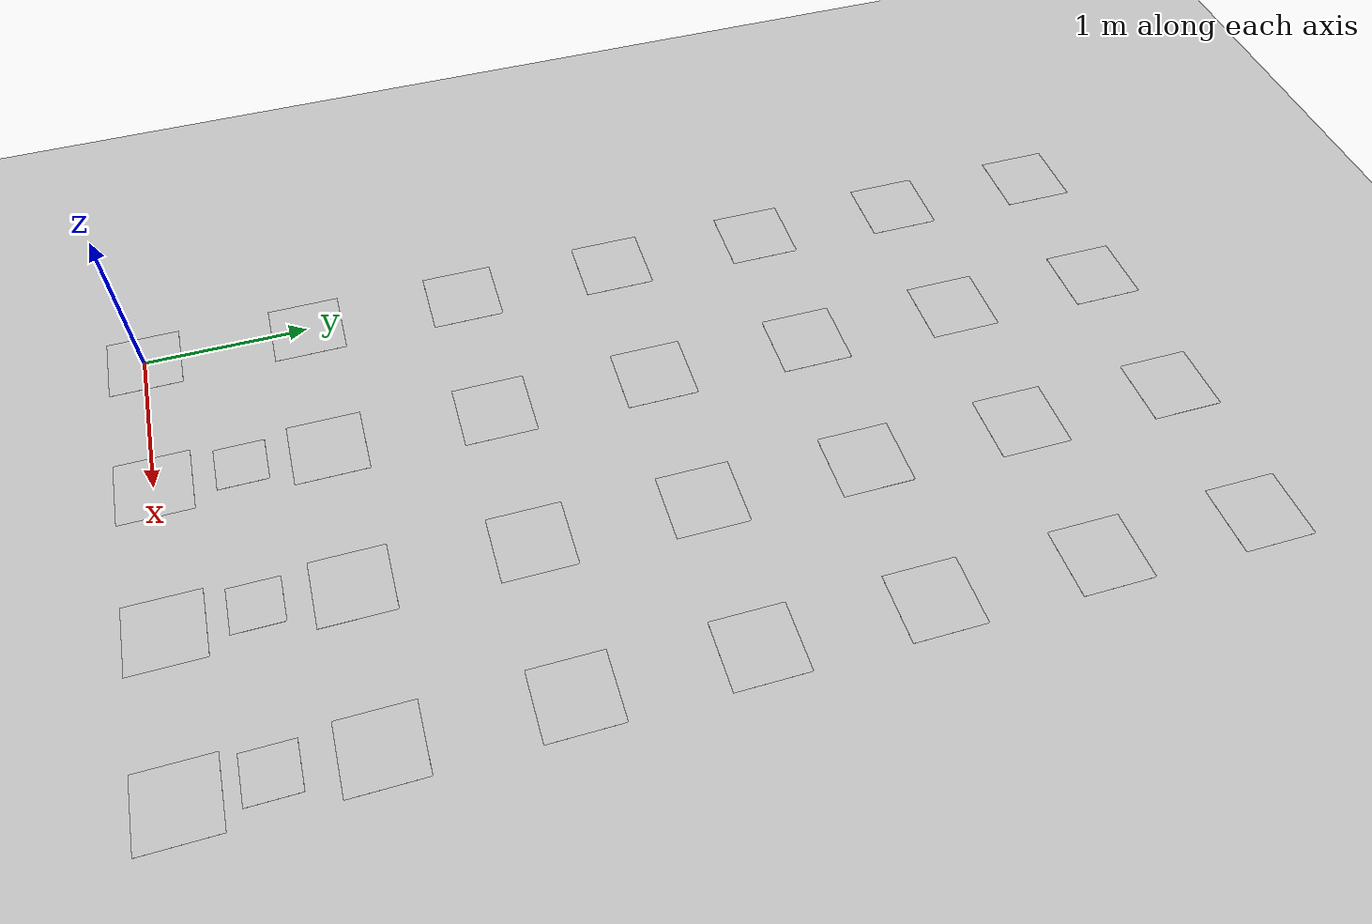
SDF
<sdf version="1.7">
 <world name="default">
  <model name="aruco_2_28">
   <static>1</static>
   <link name="aruco_2_28_link">
    <visual name="visual_marker_2_0">
     <pose>0 6 0 0 -0 1.5708</pose>
     <cast_shadows>0</cast_shadows>
     <geometry><box><size>0.44 0.44 0.001</size></box></geometry>
     <material>
      <script>
       <uri>model://aruco_aruco_map_txt/materials/scripts</uri>
       <uri>model://aruco_aruco_map_txt/materials/textures</uri>
       <name>aruco/marker_2_0</name>
      </script>
     </material>
    </visual>
    <visual name="visual_marker_2_1">
     <pose>1 6 0 0 -0 1.5708</pose>
     <cast_shadows>0</cast_shadows>
     <geometry><box><size>0.44 0.44 0.001</size></box></geometry>
     <material>
      <script>
       <uri>model://aruco_aruco_map_txt/materials/scripts</uri>
       <uri>model://aruco_aruco_map_txt/materials/textures</uri>
       <name>aruco/marker_2_1</name>
      </script>
     </material>
    </visual>
    <visual name="visual_marker_2_2">
     <pose>2 6 0 0 -0 1.5708</pose>
     <cast_shadows>0</cast_shadows>
     <geometry><box><size>0.44 0.44 0.001</size></box></geometry>
     <material>
      <script>
       <uri>model://aruco_aruco_map_txt/materials/scripts</uri>
       <uri>model://aruco_aruco_map_txt/materials/textures</uri>
       <name>aruco/marker_2_2</name>
      </script>
     </material>
    </visual>
    <visual name="visual_marker_2_3">
     <pose>3 6 0 0 -0 1.5708</pose>
     <cast_shadows>0</cast_shadows>
     <geometry><box><size>0.44 0.44 0.001</size></box></geometry>
     <material>
      <script>
       <uri>model://aruco_aruco_map_txt/materials/scripts</uri>
       <uri>model://aruco_aruco_map_txt/materials/textures</uri>
       <name>aruco/marker_2_3</name>
      </script>
     </material>
    </visual>
    <visual name="visual_marker_2_4">
     <pose>0 5 0 0 -0 1.5708</pose>
     <cast_shadows>0</cast_shadows>
     <geometry><box><size>0.44 0.44 0.001</size></box></geometry>
     <material>
      <script>
       <uri>model://aruco_aruco_map_txt/materials/scripts</uri>
       <uri>model://aruco_aruco_map_txt/materials/textures</uri>
       <name>aruco/marker_2_4</name>
      </script>
     </material>
    </visual>
    <visual name="visual_marker_2_5">
     <pose>1 5 0 0 -0 1.5708</pose>
     <cast_shadows>0</cast_shadows>
     <geometry><box><size>0.44 0.44 0.001</size></box></geometry>
     <material>
      <script>
       <uri>model://aruco_aruco_map_txt/materials/scripts</uri>
       <uri>model://aruco_aruco_map_txt/materials/textures</uri>
       <name>aruco/marker_2_5</name>
      </script>
     </material>
    </visual>
    <visual name="visual_marker_2_6">
     <pose>2 5 0 0 -0 1.5708</pose>
     <cast_shadows>0</cast_shadows>
     <geometry><box><size>0.44 0.44 0.001</size></box></geometry>
     <material>
      <script>
       <uri>model://aruco_aruco_map_txt/materials/scripts</uri>
       <uri>model://aruco_aruco_map_txt/materials/textures</uri>
       <name>aruco/marker_2_6</name>
      </script>
     </material>
    </visual>
    <visual name="visual_marker_2_7">
     <pose>3 5 0 0 -0 1.5708</pose>
     <cast_shadows>0</cast_shadows>
     <geometry><box><size>0.44 0.44 0.001</size></box></geometry>
     <material>
      <script>
       <uri>model://aruco_aruco_map_txt/materials/scripts</uri>
       <uri>model://aruco_aruco_map_txt/materials/textures</uri>
       <name>aruco/marker_2_7</name>
      </script>
     </material>
    </visual>
    <visual name="visual_marker_2_8">
     <pose>0 4 0 0 -0 1.5708</pose>
     <cast_shadows>0</cast_shadows>
     <geometry><box><size>0.44 0.44 0.001</size></box></geometry>
     <material>
      <script>
       <uri>model://aruco_aruco_map_txt/materials/scripts</uri>
       <uri>model://aruco_aruco_map_txt/materials/textures</uri>
       <name>aruco/marker_2_8</name>
      </script>
     </material>
    </visual>
    <visual name="visual_marker_2_9">
     <pose>1 4 0 0 -0 1.5708</pose>
     <cast_shadows>0</cast_shadows>
     <geometry><box><size>0.44 0.44 0.001</size></box></geometry>
     <material>
      <script>
       <uri>model://aruco_aruco_map_txt/materials/scripts</uri>
       <uri>model://aruco_aruco_map_txt/materials/textures</uri>
       <name>aruco/marker_2_9</name>
      </script>
     </material>
    </visual>
    <visual name="visual_marker_2_10">
     <pose>2 4 0 0 -0 1.5708</pose>
     <cast_shadows>0</cast_shadows>
     <geometry><box><size>0.44 0.44 0.001</size></box></geometry>
     <material>
      <script>
       <uri>model://aruco_aruco_map_txt/materials/scripts</uri>
       <uri>model://aruco_aruco_map_txt/materials/textures</uri>
       <name>aruco/marker_2_10</name>
      </script>
     </material>
    </visual>
    <visual name="visual_marker_2_11">
     <pose>3 4 0 0 -0 1.5708</pose>
     <cast_shadows>0</cast_shadows>
     <geometry><box><size>0.44 0.44 0.001</size></box></geometry>
     <material>
      <script>
       <uri>model://aruco_aruco_map_txt/materials/scripts</uri>
       <uri>model://aruco_aruco_map_txt/materials/textures</uri>
       <name>aruco/marker_2_11</name>
      </script>
     </material>
    </visual>
    <visual name="visual_marker_2_12">
     <pose>0 3 0 0 -0 1.5708</pose>
     <cast_shadows>0</cast_shadows>
     <geometry><box><size>0.44 0.44 0.001</size></box></geometry>
     <material>
      <script>
       <uri>model://aruco_aruco_map_txt/materials/scripts</uri>
       <uri>model://aruco_aruco_map_txt/materials/textures</uri>
       <name>aruco/marker_2_12</name>
      </script>
     </material>
    </visual>
    <visual name="visual_marker_2_13">
     <pose>1 3 0 0 -0 1.5708</pose>
     <cast_shadows>0</cast_shadows>
     <geometry><box><size>0.44 0.44 0.001</size></box></geometry>
     <material>
      <script>
       <uri>model://aruco_aruco_map_txt/materials/scripts</uri>
       <uri>model://aruco_aruco_map_txt/materials/textures</uri>
       <name>aruco/marker_2_13</name>
      </script>
     </material>
    </visual>
    <visual name="visual_marker_2_14">
     <pose>2 3 0 0 -0 1.5708</pose>
     <cast_shadows>0</cast_shadows>
     <geometry><box><size>0.44 0.44 0.001</size></box></geometry>
     <material>
      <script>
       <uri>model://aruco_aruco_map_txt/materials/scripts</uri>
       <uri>model://aruco_aruco_map_txt/materials/textures</uri>
       <name>aruco/marker_2_14</name>
      </script>
     </material>
    </visual>
    <visual name="visual_marker_2_15">
     <pose>3 3 0 0 -0 1.5708</pose>
     <cast_shadows>0</cast_shadows>
     <geometry><box><size>0.44 0.44 0.001</size></box></geometry>
     <material>
      <script>
       <uri>model://aruco_aruco_map_txt/materials/scripts</uri>
       <uri>model://aruco_aruco_map_txt/materials/textures</uri>
       <name>aruco/marker_2_15</name>
      </script>
     </material>
    </visual>
    <visual name="visual_marker_2_16">
     <pose>0 2 0 0 -0 1.5708</pose>
     <cast_shadows>0</cast_shadows>
     <geometry><box><size>0.44 0.44 0.001</size></box></geometry>
     <material>
      <script>
       <uri>model://aruco_aruco_map_txt/materials/scripts</uri>
       <uri>model://aruco_aruco_map_txt/materials/textures</uri>
       <name>aruco/marker_2_16</name>
      </script>
     </material>
    </visual>
    <visual name="visual_marker_2_17">
     <pose>1 2 0 0 -0 1.5708</pose>
     <cast_shadows>0</cast_shadows>
     <geometry><box><size>0.44 0.44 0.001</size></box></geometry>
     <material>
      <script>
       <uri>model://aruco_aruco_map_txt/materials/scripts</uri>
       <uri>model://aruco_aruco_map_txt/materials/textures</uri>
       <name>aruco/marker_2_17</name>
      </script>
     </material>
    </visual>
    <visual name="visual_marker_2_18">
     <pose>2 2 0 0 -0 1.5708</pose>
     <cast_shadows>0</cast_shadows>
     <geometry><box><size>0.44 0.44 0.001</size></box></geometry>
     <material>
      <script>
       <uri>model://aruco_aruco_map_txt/materials/scripts</uri>
       <uri>model://aruco_aruco_map_txt/materials/textures</uri>
       <name>aruco/marker_2_18</name>
      </script>
     </material>
    </visual>
    <visual name="visual_marker_2_19">
     <pose>3 2 0 0 -0 1.5708</pose>
     <cast_shadows>0</cast_shadows>
     <geometry><box><size>0.44 0.44 0.001</size></box></geometry>
     <material>
      <script>
       <uri>model://aruco_aruco_map_txt/materials/scripts</uri>
       <uri>model://aruco_aruco_map_txt/materials/textures</uri>
       <name>aruco/marker_2_19</name>
      </script>
     </material>
    </visual>
    <visual name="visual_marker_2_20">
     <pose>0 1 0 0 -0 1.5708</pose>
     <cast_shadows>0</cast_shadows>
     <geometry><box><size>0.44 0.44 0.001</size></box></geometry>
     <material>
      <script>
       <uri>model://aruco_aruco_map_txt/materials/scripts</uri>
       <uri>model://aruco_aruco_map_txt/materials/textures</uri>
       <name>aruco/marker_2_20</name>
      </script>
     </material>
    </visual>
    <visual name="visual_marker_2_21">
     <pose>1 1 0 0 -0 1.5708</pose>
     <cast_shadows>0</cast_shadows>
     <geometry><box><size>0.44 0.44 0.001</size></box></geometry>
     <material>
      <script>
       <uri>model://aruco_aruco_map_txt/materials/scripts</uri>
       <uri>model://aruco_aruco_map_txt/materials/textures</uri>
       <name>aruco/marker_2_21</name>
      </script>
     </material>
    </visual>
    <visual name="visual_marker_2_22">
     <pose>2 1 0 0 -0 1.5708</pose>
     <cast_shadows>0</cast_shadows>
     <geometry><box><size>0.44 0.44 0.001</size></box></geometry>
     <material>
      <script>
       <uri>model://aruco_aruco_map_txt/materials/scripts</uri>
       <uri>model://aruco_aruco_map_txt/materials/textures</uri>
       <name>aruco/marker_2_22</name>
      </script>
     </material>
    </visual>
    <visual name="visual_marker_2_23">
     <pose>3 1 0 0 -0 1.5708</pose>
     <cast_shadows>0</cast_shadows>
     <geometry><box><size>0.44 0.44 0.001</size></box></geometry>
     <material>
      <script>
       <uri>model://aruco_aruco_map_txt/materials/scripts</uri>
       <uri>model://aruco_aruco_map_txt/materials/textures</uri>
       <name>aruco/marker_2_23</name>
      </script>
     </material>
    </visual>
    <visual name="visual_marker_2_24">
     <pose>0 0 0 0 -0 1.5708</pose>
     <cast_shadows>0</cast_shadows>
     <geometry><box><size>0.44 0.44 0.001</size></box></geometry>
     <material>
      <script>
       <uri>model://aruco_aruco_map_txt/materials/scripts</uri>
       <uri>model://aruco_aruco_map_txt/materials/textures</uri>
       <name>aruco/marker_2_24</name>
      </script>
     </material>
    </visual>
    <visual name="visual_marker_2_25">
     <pose>1 0 0 0 -0 1.5708</pose>
     <cast_shadows>0</cast_shadows>
     <geometry><box><size>0.44 0.44 0.001</size></box></geometry>
     <material>
      <script>
       <uri>model://aruco_aruco_map_txt/materials/scripts</uri>
       <uri>model://aruco_aruco_map_txt/materials/textures</uri>
       <name>aruco/marker_2_25</name>
      </script>
     </material>
    </visual>
    <visual name="visual_marker_2_26">
     <pose>2 0 0 0 -0 1.5708</pose>
     <cast_shadows>0</cast_shadows>
     <geometry><box><size>0.44 0.44 0.001</size></box></geometry>
     <material>
      <script>
       <uri>model://aruco_aruco_map_txt/materials/scripts</uri>
       <uri>model://aruco_aruco_map_txt/materials/textures</uri>
       <name>aruco/marker_2_26</name>
      </script>
     </material>
    </visual>
    <visual name="visual_marker_2_27">
     <pose>3 0 0 0 -0 1.5708</pose>
     <cast_shadows>0</cast_shadows>
     <geometry><box><size>0.44 0.44 0.001</size></box></geometry>
     <material>
      <script>
       <uri>model://aruco_aruco_map_txt/materials/scripts</uri>
       <uri>model://aruco_aruco_map_txt/materials/textures</uri>
       <name>aruco/marker_2_27</name>
      </script>
     </material>
    </visual>
   </link>
  </model>
  <light name="sun" type="directional">
   <pose>0 0 10 0 -0 0</pose>
   <diffuse>0.8 0.8 0.8 1</diffuse>
   <specular>0.2 0.2 0.2 1</specular>
   <attenuation>
    <range>1000</range>
    <constant>0.9</constant>
    <linear>0.01</linear>
    <quadratic>0.001</quadratic>
   </attenuation>
   <direction>-0.5 0.1 -0.9</direction>
   <spot><inner_angle>0</inner_angle><outer_angle>0</outer_angle><falloff>0</falloff></spot>
  </light>
  <model name="parquet_plane">
   <static>1</static>
   <link name="link">
    <collision name="collision"><geometry><box><size>200 200 0.02</size></box></geometry></collision>
    <visual name="visual">
     <cast_shadows>0</cast_shadows>
     <geometry><box><size>200 200 0.02</size></box></geometry>
     <material>
      <script>
       <uri>model://parquet_plane/materials/scripts</uri>
       <uri>model://parquet_plane/materials/textures</uri>
       <name>parquet</name>
      </script>
     </material>
    </visual>
   </link>
   <pose>0 0 -0.01 0 -0 0</pose>
  </model>
  <scene>
   <ambient>0.8 0.8 0.8 1</ambient>
   <background>0.8 0.9 1 1</background>
   <shadows>0</shadows>
   <grid>0</grid>
   <origin_visual>0</origin_visual>
  </scene>
  <physics name="default_physics" default="0" type="ode">
   <ode>
    <solver>
     <type>quick</type>
     <iters>10</iters>
     <sor>1.3</sor>
     <use_dynamic_moi_rescaling>0</use_dynamic_moi_rescaling>
    </solver>
    <constraints>
     <cfm>0</cfm>
     <erp>0.2</erp>
     <contact_max_correcting_vel>100</contact_max_correcting_vel>
     <contact_surface_layer>0.001</contact_surface_layer>
    </constraints>
   </ode>
   <max_step_size>0.004</max_step_size>
   <real_time_factor>1</real_time_factor>
   <real_time_update_rate>250</real_time_update_rate>
  </physics>
  <gravity>0 0 -9.8066</gravity>
  <magnetic_field>6e-06 2.3e-05 -4.2e-05</magnetic_field>
  <atmosphere type="adiabatic"/>
  <spherical_coordinates>
   <surface_model>EARTH_WGS84</surface_model>
   <latitude_deg>0</latitude_deg>
   <longitude_deg>0</longitude_deg>
   <elevation>0</elevation>
   <heading_deg>0</heading_deg>
  </spherical_coordinates>
  <model name="Canada">
   <static>1</static>
   <link name="Canada_link">
    <pose>0 0 0.001 0 -0 1.5708</pose>
    <visual name="visual_Canada">
     <cast_shadows>0</cast_shadows>
     <geometry><box><size>0.3 0.3 0.001</size></box></geometry>
     <material>
      <script>
       <uri>model://Canada/materials/scripts</uri>
       <uri>model://Canada/materials/textures</uri>
       <name>Canada</name>
      </script>
     </material>
    </visual>
   </link>
   <pose>0.977948 0.498192 0 0 -0 0</pose>
  </model>
  <model name="Japan">
   <static>1</static>
   <link name="Japan_link">
    <pose>0 0 0.001 0 -0 1.5708</pose>
    <visual name="visual_Japan">
     <cast_shadows>0</cast_shadows>
     <geometry><box><size>0.3 0.3 0.001</size></box></geometry>
     <material>
      <script>
       <uri>model://Japan/materials/scripts</uri>
       <uri>model://Japan/materials/textures</uri>
       <name>Japan</name>
      </script>
     </material>
    </visual>
   </link>
   <pose>1.97177 0.483255 0 0 -0 0</pose>
  </model>
  <model name="Switzerland">
   <static>1</static>
   <link name="Switzerland_link">
    <pose>0 0 0.001 0 -0 1.5708</pose>
    <visual name="visual_Switzerland">
     <cast_shadows>0</cast_shadows>
     <geometry><box><size>0.3 0.3 0.001</size></box></geometry>
     <material>
      <script>
       <uri>model://Switzerland/materials/scripts</uri>
       <uri>model://Switzerland/materials/textures</uri>
       <name>Switzerland</name>
      </script>
     </material>
    </visual>
   </link>
   <pose>2.9707 0.456542 0 0 -0 0</pose>
  </model>
 </world>
</sdf>
